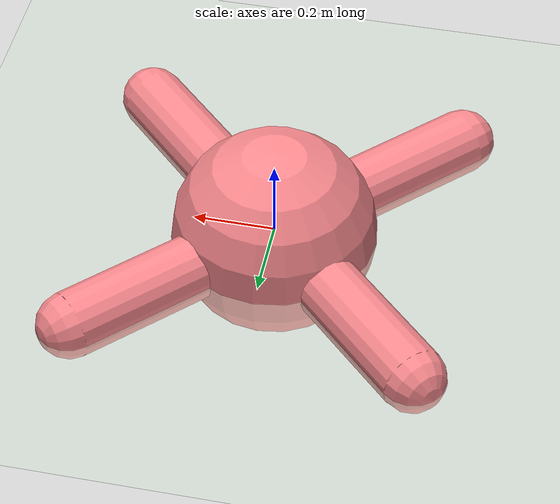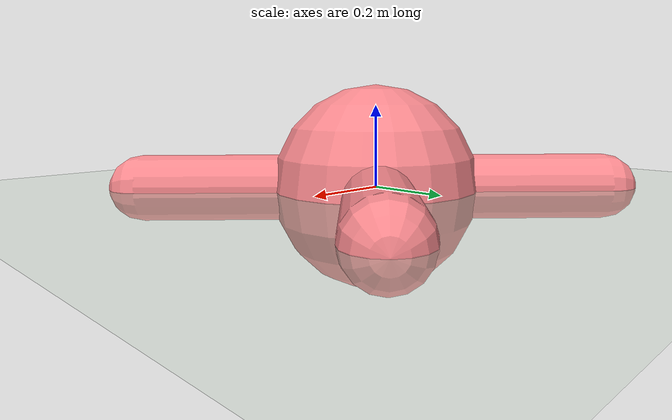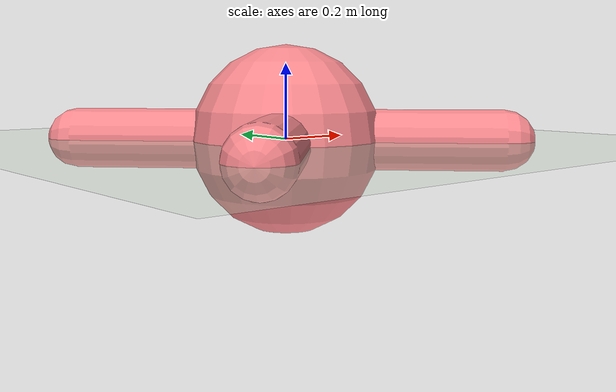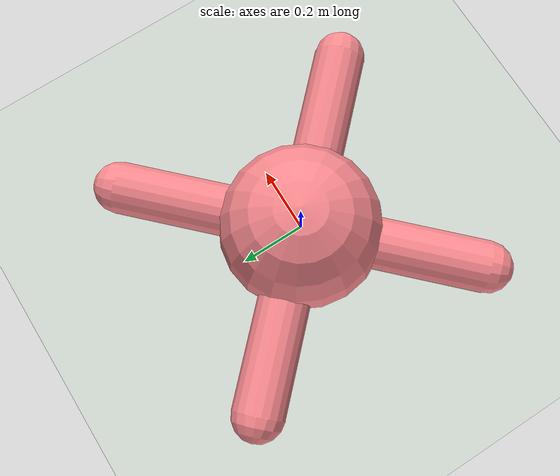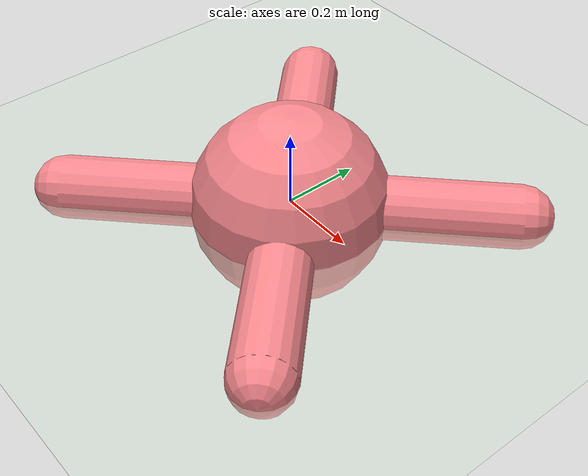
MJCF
<mujoco model="ant">
  <compiler angle="degree" coordinate="global" inertiafromgeom="true"/>
  <option integrator="RK4" timestep="0.01"/>
  <default>
    <joint armature="1" damping="1" limited="true"/>
    <geom conaffinity="0" condim="3" density="5.0" friction="1 0.5 0.5" margin="0.01" rgba=".98 .54 .56 1."/>
  </default>
  <visual>
    <headlight ambient=".1 .1 .1" diffuse=".6 .6 .6" specular="0.3 0.3 0.3"/>
    <map znear=".01"/>
    <quality shadowsize="16384"/>
  </visual>
  <worldbody>
    <light cutoff="100" diffuse="1 1 1" dir="-0 0 -1.3" directional="true" exponent="1" pos="0 0 1.3" specular=".1 .1 .1"/>
    <geom conaffinity="1" condim="3" name="floor" pos="0 0 0" rgba="0.8 0.9 0.8 1" size="200 200 .125" type="plane" material="grid_new"/>
    <body name="0" pos="0 0 0">
      <camera name="track" mode="trackcom" pos="0 -3 0.3" xyaxes="1 0 0 0 0 1"/>
      <geom pos="0 0 0" size="0.25" type="sphere"/>
      <joint armature="0" damping="0" limited="false" margin="0.01" name="root" pos="0 0 0" type="free"/>
      <body name="1" pos="0 0 0">
        <joint axis="-0.707107 0.707107 0" name="1_joint" pos="0 0 0" range="-30 30" type="hinge"/>
        <geom fromto="0 0 0 0.4 0.4 0" size="0.08" type="capsule"/>
      </body>
      <body name="2" pos="0 0 0">
        <joint axis="-0.707107 -0.707107 0" name="2_joint" pos="0 0 0" range="-30 30" type="hinge"/>
        <geom fromto="0 0 0 -0.4 0.4 0" size="0.08" type="capsule"/>
      </body>
      <body name="3" pos="0 0 0">
        <joint axis="0.707107 -0.707107 0" name="3_joint" pos="0 0 0" range="-30 30" type="hinge"/>
        <geom fromto="0 0 0 -0.4 -0.4 0" size="0.08" type="capsule"/>
      </body>
      <body name="4" pos="0 0 0">
        <joint axis="0.707107 0.707107 0" name="4_joint" pos="0 0 0" range="-30 30" type="hinge"/>
        <geom fromto="0 0 0 0.4 -0.4 0" size="0.08" type="capsule"/>
      </body>
      <body name="5" pos="0 0 0">
        <joint axis="0.707107 0.707107 0" name="5_joint" pos="0 0 0" range="-30 30" type="hinge"/>
        <geom fromto="0 0 0 0.4 -0.4 0" size="0.08" type="capsule"/>
      </body>
      <body name="6" pos="0 0 0">
        <joint axis="0.707107 0.707107 0" name="6_joint" pos="0 0 0" range="-30 30" type="hinge"/>
        <geom fromto="0 0 0 0.4 -0.4 0" size="0.08" type="capsule"/>
      </body>
      <body name="7" pos="0 0 0">
        <joint axis="0.707107 0.707107 0" name="7_joint" pos="0 0 0" range="-30 30" type="hinge"/>
        <geom fromto="0 0 0 0.4 -0.4 0" size="0.08" type="capsule"/>
      </body>
    </body>
  </worldbody>
  <actuator>
    <motor ctrllimited="true" ctrlrange="-1.0 1.0" joint="1_joint" gear="150" name="1_joint"/>
    <motor ctrllimited="true" ctrlrange="-1.0 1.0" joint="2_joint" gear="150" name="2_joint"/>
    <motor ctrllimited="true" ctrlrange="-1.0 1.0" joint="3_joint" gear="150" name="3_joint"/>
    <motor ctrllimited="true" ctrlrange="-1.0 1.0" joint="4_joint" gear="150" name="4_joint"/>
    <motor ctrllimited="true" ctrlrange="-1.0 1.0" joint="5_joint" gear="150" name="5_joint"/>
    <motor ctrllimited="true" ctrlrange="-1.0 1.0" joint="6_joint" gear="150" name="6_joint"/>
    <motor ctrllimited="true" ctrlrange="-1.0 1.0" joint="7_joint" gear="150" name="7_joint"/>
  </actuator>
  <asset>
    <texture type="skybox" builtin="gradient" rgb1=".4 .5 .6" rgb2="0 0 0" width="100" height="100"/>
    <texture builtin="flat" height="1278" mark="cross" markrgb="1 1 1" name="texgeom" random="0.01" rgb1="0.8 0.6 0.4" rgb2="0.8 0.6 0.4" type="cube" width="127"/>
    <texture builtin="checker" height="100" name="texplane" rgb1="0 0 0" rgb2="0.8 0.8 0.8" type="2d" width="100"/>
    <material name="MatPlane" reflectance="0.5" shininess="1" specular="1" texrepeat="60 60" texture="texplane"/>
    <material name="geom" texture="texgeom" texuniform="true"/>
    <texture name="grid_new" type="2d" builtin="checker" rgb1=".1 .3 .2" rgb2=".2 .4 .3" width="1000" height="1000" mark="none" markrgb=".8 .6 .4"/>
    <material name="grid_new" texture="grid_new" texrepeat="0.2 0.2" texuniform="true" reflectance=".2"/>
  </asset>
</mujoco>
